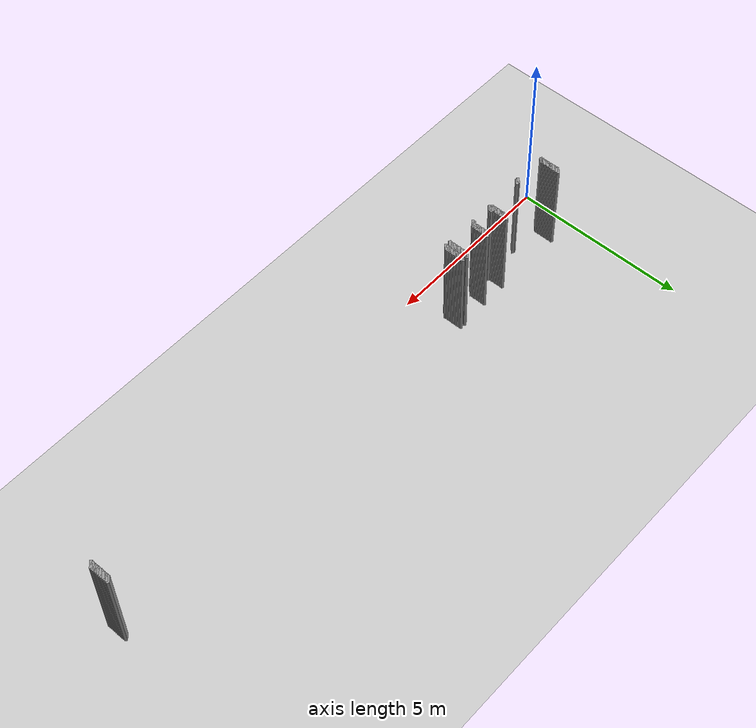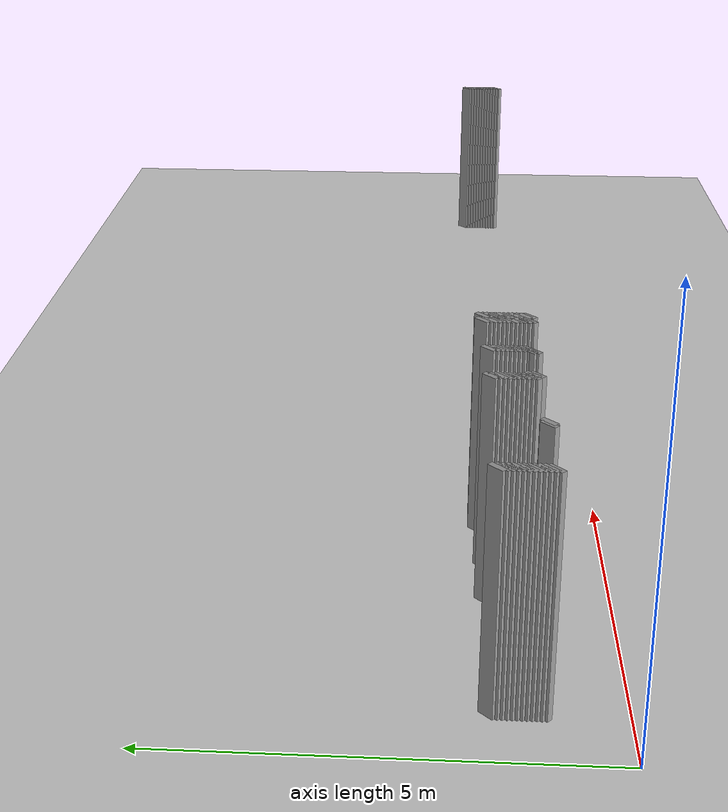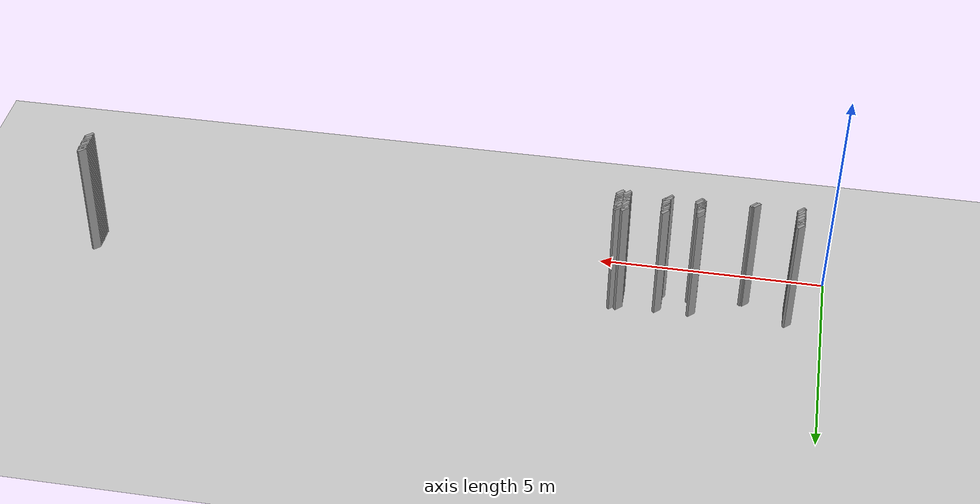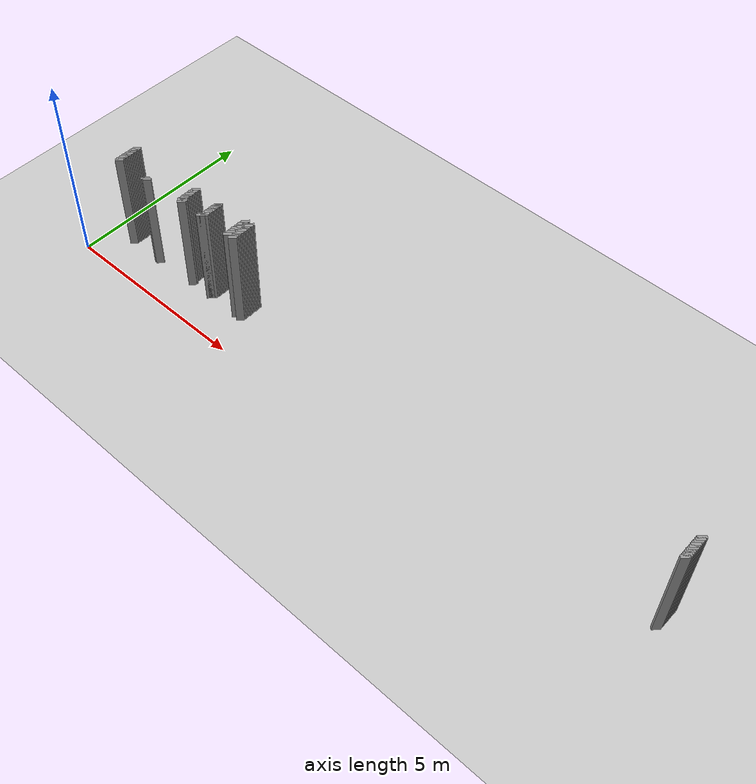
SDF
<sdf version="1.5">
 <world name="default">
  <include><uri>model://ground_plane</uri></include>
  <include><uri>model://sun</uri></include>
  <model name="grey_wall_2516">
   <static>1</static>
   <link name="link">
    <pose>4.45 1.5  1.4 0 0 -0.7853981633974394</pose>
    <collision name="collision">
     <geometry><box><size>0.07071067811865513 .2  2.8</size></box></geometry>
    </collision>
    <visual name="visual">
     <cast_shadows>0</cast_shadows>
     <geometry><box><size>0.07071067811865513 .2  2.8</size></box></geometry>
     <material>
      <script>
       <uri>model://grey_wall/materials/scripts</uri>
       <uri>model://grey_wall/materials/textures</uri>
       <name>vrc/grey_wall</name>
      </script>
     </material>
    </visual>
   </link>
  </model>
  <model name="grey_wall_2517">
   <static>1</static>
   <link name="link">
    <pose>4.6000000000000005 1.5  1.4 0 0 -0.7853981633974394</pose>
    <collision name="collision">
     <geometry><box><size>0.07071067811865513 .2  2.8</size></box></geometry>
    </collision>
    <visual name="visual">
     <cast_shadows>0</cast_shadows>
     <geometry><box><size>0.07071067811865513 .2  2.8</size></box></geometry>
     <material>
      <script>
       <uri>model://grey_wall/materials/scripts</uri>
       <uri>model://grey_wall/materials/textures</uri>
       <name>vrc/grey_wall</name>
      </script>
     </material>
    </visual>
   </link>
  </model>
  <model name="grey_wall_2518">
   <static>1</static>
   <link name="link">
    <pose>16.45 1.5  1.4 0 0 -0.7853981633974749</pose>
    <collision name="collision">
     <geometry><box><size>0.07071067811865261 .2  2.8</size></box></geometry>
    </collision>
    <visual name="visual">
     <cast_shadows>0</cast_shadows>
     <geometry><box><size>0.07071067811865261 .2  2.8</size></box></geometry>
     <material>
      <script>
       <uri>model://grey_wall/materials/scripts</uri>
       <uri>model://grey_wall/materials/textures</uri>
       <name>vrc/grey_wall</name>
      </script>
     </material>
    </visual>
   </link>
  </model>
  <model name="grey_wall_2519">
   <static>1</static>
   <link name="link">
    <pose>0.75 1.4500000000000002  1.4 0 0 -0.7853981633974461</pose>
    <collision name="collision">
     <geometry><box><size>0.07071067811865465 .2  2.8</size></box></geometry>
    </collision>
    <visual name="visual">
     <cast_shadows>0</cast_shadows>
     <geometry><box><size>0.07071067811865465 .2  2.8</size></box></geometry>
     <material>
      <script>
       <uri>model://grey_wall/materials/scripts</uri>
       <uri>model://grey_wall/materials/textures</uri>
       <name>vrc/grey_wall</name>
      </script>
     </material>
    </visual>
   </link>
  </model>
  <model name="grey_wall_2520">
   <static>1</static>
   <link name="link">
    <pose>2.85 1.4500000000000002  1.4 0 0 -0.7853981633974483</pose>
    <collision name="collision">
     <geometry><box><size>0.0707106781186545 .2  2.8</size></box></geometry>
    </collision>
    <visual name="visual">
     <cast_shadows>0</cast_shadows>
     <geometry><box><size>0.0707106781186545 .2  2.8</size></box></geometry>
     <material>
      <script>
       <uri>model://grey_wall/materials/scripts</uri>
       <uri>model://grey_wall/materials/textures</uri>
       <name>vrc/grey_wall</name>
      </script>
     </material>
    </visual>
   </link>
  </model>
  <model name="grey_wall_2521">
   <static>1</static>
   <link name="link">
    <pose>3.6 1.4500000000000002  1.4 0 0 -0.7853981633974483</pose>
    <collision name="collision">
     <geometry><box><size>0.0707106781186545 .2  2.8</size></box></geometry>
    </collision>
    <visual name="visual">
     <cast_shadows>0</cast_shadows>
     <geometry><box><size>0.0707106781186545 .2  2.8</size></box></geometry>
     <material>
      <script>
       <uri>model://grey_wall/materials/scripts</uri>
       <uri>model://grey_wall/materials/textures</uri>
       <name>vrc/grey_wall</name>
      </script>
     </material>
    </visual>
   </link>
  </model>
  <model name="grey_wall_2522">
   <static>1</static>
   <link name="link">
    <pose>4.45 1.4500000000000002  1.4 0 0 -0.7853981633974394</pose>
    <collision name="collision">
     <geometry><box><size>0.07071067811865513 .2  2.8</size></box></geometry>
    </collision>
    <visual name="visual">
     <cast_shadows>0</cast_shadows>
     <geometry><box><size>0.07071067811865513 .2  2.8</size></box></geometry>
     <material>
      <script>
       <uri>model://grey_wall/materials/scripts</uri>
       <uri>model://grey_wall/materials/textures</uri>
       <name>vrc/grey_wall</name>
      </script>
     </material>
    </visual>
   </link>
  </model>
  <model name="grey_wall_2523">
   <static>1</static>
   <link name="link">
    <pose>4.6000000000000005 1.4500000000000002  1.4 0 0 -0.7853981633974394</pose>
    <collision name="collision">
     <geometry><box><size>0.07071067811865513 .2  2.8</size></box></geometry>
    </collision>
    <visual name="visual">
     <cast_shadows>0</cast_shadows>
     <geometry><box><size>0.07071067811865513 .2  2.8</size></box></geometry>
     <material>
      <script>
       <uri>model://grey_wall/materials/scripts</uri>
       <uri>model://grey_wall/materials/textures</uri>
       <name>vrc/grey_wall</name>
      </script>
     </material>
    </visual>
   </link>
  </model>
  <model name="grey_wall_2524">
   <static>1</static>
   <link name="link">
    <pose>16.45 1.4500000000000002  1.4 0 0 -0.7853981633974749</pose>
    <collision name="collision">
     <geometry><box><size>0.07071067811865261 .2  2.8</size></box></geometry>
    </collision>
    <visual name="visual">
     <cast_shadows>0</cast_shadows>
     <geometry><box><size>0.07071067811865261 .2  2.8</size></box></geometry>
     <material>
      <script>
       <uri>model://grey_wall/materials/scripts</uri>
       <uri>model://grey_wall/materials/textures</uri>
       <name>vrc/grey_wall</name>
      </script>
     </material>
    </visual>
   </link>
  </model>
  <model name="grey_wall_2525">
   <static>1</static>
   <link name="link">
    <pose>0.75 1.4000000000000001  1.4 0 0 -0.7853981633974461</pose>
    <collision name="collision">
     <geometry><box><size>0.07071067811865465 .2  2.8</size></box></geometry>
    </collision>
    <visual name="visual">
     <cast_shadows>0</cast_shadows>
     <geometry><box><size>0.07071067811865465 .2  2.8</size></box></geometry>
     <material>
      <script>
       <uri>model://grey_wall/materials/scripts</uri>
       <uri>model://grey_wall/materials/textures</uri>
       <name>vrc/grey_wall</name>
      </script>
     </material>
    </visual>
   </link>
  </model>
  <model name="grey_wall_2526">
   <static>1</static>
   <link name="link">
    <pose>2.85 1.4000000000000001  1.4 0 0 -0.7853981633974483</pose>
    <collision name="collision">
     <geometry><box><size>0.0707106781186545 .2  2.8</size></box></geometry>
    </collision>
    <visual name="visual">
     <cast_shadows>0</cast_shadows>
     <geometry><box><size>0.0707106781186545 .2  2.8</size></box></geometry>
     <material>
      <script>
       <uri>model://grey_wall/materials/scripts</uri>
       <uri>model://grey_wall/materials/textures</uri>
       <name>vrc/grey_wall</name>
      </script>
     </material>
    </visual>
   </link>
  </model>
  <model name="grey_wall_2527">
   <static>1</static>
   <link name="link">
    <pose>3.6 1.4000000000000001  1.4 0 0 -0.7853981633974483</pose>
    <collision name="collision">
     <geometry><box><size>0.0707106781186545 .2  2.8</size></box></geometry>
    </collision>
    <visual name="visual">
     <cast_shadows>0</cast_shadows>
     <geometry><box><size>0.0707106781186545 .2  2.8</size></box></geometry>
     <material>
      <script>
       <uri>model://grey_wall/materials/scripts</uri>
       <uri>model://grey_wall/materials/textures</uri>
       <name>vrc/grey_wall</name>
      </script>
     </material>
    </visual>
   </link>
  </model>
  <model name="grey_wall_2528">
   <static>1</static>
   <link name="link">
    <pose>4.45 1.4000000000000001  1.4 0 0 -0.7853981633974394</pose>
    <collision name="collision">
     <geometry><box><size>0.07071067811865513 .2  2.8</size></box></geometry>
    </collision>
    <visual name="visual">
     <cast_shadows>0</cast_shadows>
     <geometry><box><size>0.07071067811865513 .2  2.8</size></box></geometry>
     <material>
      <script>
       <uri>model://grey_wall/materials/scripts</uri>
       <uri>model://grey_wall/materials/textures</uri>
       <name>vrc/grey_wall</name>
      </script>
     </material>
    </visual>
   </link>
  </model>
  <model name="grey_wall_2529">
   <static>1</static>
   <link name="link">
    <pose>4.6000000000000005 1.4000000000000001  1.4 0 0 -0.7853981633974394</pose>
    <collision name="collision">
     <geometry><box><size>0.07071067811865513 .2  2.8</size></box></geometry>
    </collision>
    <visual name="visual">
     <cast_shadows>0</cast_shadows>
     <geometry><box><size>0.07071067811865513 .2  2.8</size></box></geometry>
     <material>
      <script>
       <uri>model://grey_wall/materials/scripts</uri>
       <uri>model://grey_wall/materials/textures</uri>
       <name>vrc/grey_wall</name>
      </script>
     </material>
    </visual>
   </link>
  </model>
  <model name="grey_wall_2530">
   <static>1</static>
   <link name="link">
    <pose>16.45 1.4000000000000001  1.4 0 0 -0.7853981633974749</pose>
    <collision name="collision">
     <geometry><box><size>0.07071067811865261 .2  2.8</size></box></geometry>
    </collision>
    <visual name="visual">
     <cast_shadows>0</cast_shadows>
     <geometry><box><size>0.07071067811865261 .2  2.8</size></box></geometry>
     <material>
      <script>
       <uri>model://grey_wall/materials/scripts</uri>
       <uri>model://grey_wall/materials/textures</uri>
       <name>vrc/grey_wall</name>
      </script>
     </material>
    </visual>
   </link>
  </model>
  <model name="grey_wall_2531">
   <static>1</static>
   <link name="link">
    <pose>0.75 1.35  1.4 0 0 -0.7853981633974461</pose>
    <collision name="collision">
     <geometry><box><size>0.07071067811865465 .2  2.8</size></box></geometry>
    </collision>
    <visual name="visual">
     <cast_shadows>0</cast_shadows>
     <geometry><box><size>0.07071067811865465 .2  2.8</size></box></geometry>
     <material>
      <script>
       <uri>model://grey_wall/materials/scripts</uri>
       <uri>model://grey_wall/materials/textures</uri>
       <name>vrc/grey_wall</name>
      </script>
     </material>
    </visual>
   </link>
  </model>
  <model name="grey_wall_2532">
   <static>1</static>
   <link name="link">
    <pose>2.85 1.35  1.4 0 0 -0.7853981633974483</pose>
    <collision name="collision">
     <geometry><box><size>0.0707106781186545 .2  2.8</size></box></geometry>
    </collision>
    <visual name="visual">
     <cast_shadows>0</cast_shadows>
     <geometry><box><size>0.0707106781186545 .2  2.8</size></box></geometry>
     <material>
      <script>
       <uri>model://grey_wall/materials/scripts</uri>
       <uri>model://grey_wall/materials/textures</uri>
       <name>vrc/grey_wall</name>
      </script>
     </material>
    </visual>
   </link>
  </model>
  <model name="grey_wall_2533">
   <static>1</static>
   <link name="link">
    <pose>3.6 1.35  1.4 0 0 -0.7853981633974483</pose>
    <collision name="collision">
     <geometry><box><size>0.0707106781186545 .2  2.8</size></box></geometry>
    </collision>
    <visual name="visual">
     <cast_shadows>0</cast_shadows>
     <geometry><box><size>0.0707106781186545 .2  2.8</size></box></geometry>
     <material>
      <script>
       <uri>model://grey_wall/materials/scripts</uri>
       <uri>model://grey_wall/materials/textures</uri>
       <name>vrc/grey_wall</name>
      </script>
     </material>
    </visual>
   </link>
  </model>
  <model name="grey_wall_2534">
   <static>1</static>
   <link name="link">
    <pose>4.45 1.35  1.4 0 0 -0.7853981633974394</pose>
    <collision name="collision">
     <geometry><box><size>0.07071067811865513 .2  2.8</size></box></geometry>
    </collision>
    <visual name="visual">
     <cast_shadows>0</cast_shadows>
     <geometry><box><size>0.07071067811865513 .2  2.8</size></box></geometry>
     <material>
      <script>
       <uri>model://grey_wall/materials/scripts</uri>
       <uri>model://grey_wall/materials/textures</uri>
       <name>vrc/grey_wall</name>
      </script>
     </material>
    </visual>
   </link>
  </model>
  <model name="grey_wall_2535">
   <static>1</static>
   <link name="link">
    <pose>4.6000000000000005 1.35  1.4 0 0 -0.7853981633974394</pose>
    <collision name="collision">
     <geometry><box><size>0.07071067811865513 .2  2.8</size></box></geometry>
    </collision>
    <visual name="visual">
     <cast_shadows>0</cast_shadows>
     <geometry><box><size>0.07071067811865513 .2  2.8</size></box></geometry>
     <material>
      <script>
       <uri>model://grey_wall/materials/scripts</uri>
       <uri>model://grey_wall/materials/textures</uri>
       <name>vrc/grey_wall</name>
      </script>
     </material>
    </visual>
   </link>
  </model>
  <model name="grey_wall_2536">
   <static>1</static>
   <link name="link">
    <pose>16.45 1.35  1.4 0 0 -0.7853981633974749</pose>
    <collision name="collision">
     <geometry><box><size>0.07071067811865261 .2  2.8</size></box></geometry>
    </collision>
    <visual name="visual">
     <cast_shadows>0</cast_shadows>
     <geometry><box><size>0.07071067811865261 .2  2.8</size></box></geometry>
     <material>
      <script>
       <uri>model://grey_wall/materials/scripts</uri>
       <uri>model://grey_wall/materials/textures</uri>
       <name>vrc/grey_wall</name>
      </script>
     </material>
    </visual>
   </link>
  </model>
  <model name="grey_wall_2537">
   <static>1</static>
   <link name="link">
    <pose>0.75 1.3  1.4 0 0 -0.7853981633974461</pose>
    <collision name="collision">
     <geometry><box><size>0.07071067811865465 .2  2.8</size></box></geometry>
    </collision>
    <visual name="visual">
     <cast_shadows>0</cast_shadows>
     <geometry><box><size>0.07071067811865465 .2  2.8</size></box></geometry>
     <material>
      <script>
       <uri>model://grey_wall/materials/scripts</uri>
       <uri>model://grey_wall/materials/textures</uri>
       <name>vrc/grey_wall</name>
      </script>
     </material>
    </visual>
   </link>
  </model>
  <model name="grey_wall_2538">
   <static>1</static>
   <link name="link">
    <pose>2.85 1.3  1.4 0 0 -0.7853981633974483</pose>
    <collision name="collision">
     <geometry><box><size>0.0707106781186545 .2  2.8</size></box></geometry>
    </collision>
    <visual name="visual">
     <cast_shadows>0</cast_shadows>
     <geometry><box><size>0.0707106781186545 .2  2.8</size></box></geometry>
     <material>
      <script>
       <uri>model://grey_wall/materials/scripts</uri>
       <uri>model://grey_wall/materials/textures</uri>
       <name>vrc/grey_wall</name>
      </script>
     </material>
    </visual>
   </link>
  </model>
  <model name="grey_wall_2539">
   <static>1</static>
   <link name="link">
    <pose>3.6 1.3  1.4 0 0 -0.7853981633974483</pose>
    <collision name="collision">
     <geometry><box><size>0.0707106781186545 .2  2.8</size></box></geometry>
    </collision>
    <visual name="visual">
     <cast_shadows>0</cast_shadows>
     <geometry><box><size>0.0707106781186545 .2  2.8</size></box></geometry>
     <material>
      <script>
       <uri>model://grey_wall/materials/scripts</uri>
       <uri>model://grey_wall/materials/textures</uri>
       <name>vrc/grey_wall</name>
      </script>
     </material>
    </visual>
   </link>
  </model>
  <model name="grey_wall_2540">
   <static>1</static>
   <link name="link">
    <pose>4.45 1.3  1.4 0 0 -0.7853981633974394</pose>
    <collision name="collision">
     <geometry><box><size>0.07071067811865513 .2  2.8</size></box></geometry>
    </collision>
    <visual name="visual">
     <cast_shadows>0</cast_shadows>
     <geometry><box><size>0.07071067811865513 .2  2.8</size></box></geometry>
     <material>
      <script>
       <uri>model://grey_wall/materials/scripts</uri>
       <uri>model://grey_wall/materials/textures</uri>
       <name>vrc/grey_wall</name>
      </script>
     </material>
    </visual>
   </link>
  </model>
  <model name="grey_wall_2541">
   <static>1</static>
   <link name="link">
    <pose>4.6000000000000005 1.3  1.4 0 0 -0.7853981633974394</pose>
    <collision name="collision">
     <geometry><box><size>0.07071067811865513 .2  2.8</size></box></geometry>
    </collision>
    <visual name="visual">
     <cast_shadows>0</cast_shadows>
     <geometry><box><size>0.07071067811865513 .2  2.8</size></box></geometry>
     <material>
      <script>
       <uri>model://grey_wall/materials/scripts</uri>
       <uri>model://grey_wall/materials/textures</uri>
       <name>vrc/grey_wall</name>
      </script>
     </material>
    </visual>
   </link>
  </model>
  <model name="grey_wall_2542">
   <static>1</static>
   <link name="link">
    <pose>16.45 1.3  1.4 0 0 -0.7853981633974749</pose>
    <collision name="collision">
     <geometry><box><size>0.07071067811865261 .2  2.8</size></box></geometry>
    </collision>
    <visual name="visual">
     <cast_shadows>0</cast_shadows>
     <geometry><box><size>0.07071067811865261 .2  2.8</size></box></geometry>
     <material>
      <script>
       <uri>model://grey_wall/materials/scripts</uri>
       <uri>model://grey_wall/materials/textures</uri>
       <name>vrc/grey_wall</name>
      </script>
     </material>
    </visual>
   </link>
  </model>
  <model name="grey_wall_2543">
   <static>1</static>
   <link name="link">
    <pose>0.75 1.25  1.4 0 0 -0.7853981633974461</pose>
    <collision name="collision">
     <geometry><box><size>0.07071067811865465 .2  2.8</size></box></geometry>
    </collision>
    <visual name="visual">
     <cast_shadows>0</cast_shadows>
     <geometry><box><size>0.07071067811865465 .2  2.8</size></box></geometry>
     <material>
      <script>
       <uri>model://grey_wall/materials/scripts</uri>
       <uri>model://grey_wall/materials/textures</uri>
       <name>vrc/grey_wall</name>
      </script>
     </material>
    </visual>
   </link>
  </model>
  <model name="grey_wall_2544">
   <static>1</static>
   <link name="link">
    <pose>2.85 1.25  1.4 0 0 -0.7853981633974483</pose>
    <collision name="collision">
     <geometry><box><size>0.0707106781186545 .2  2.8</size></box></geometry>
    </collision>
    <visual name="visual">
     <cast_shadows>0</cast_shadows>
     <geometry><box><size>0.0707106781186545 .2  2.8</size></box></geometry>
     <material>
      <script>
       <uri>model://grey_wall/materials/scripts</uri>
       <uri>model://grey_wall/materials/textures</uri>
       <name>vrc/grey_wall</name>
      </script>
     </material>
    </visual>
   </link>
  </model>
  <model name="grey_wall_2545">
   <static>1</static>
   <link name="link">
    <pose>3.6 1.25  1.4 0 0 -0.7853981633974483</pose>
    <collision name="collision">
     <geometry><box><size>0.0707106781186545 .2  2.8</size></box></geometry>
    </collision>
    <visual name="visual">
     <cast_shadows>0</cast_shadows>
     <geometry><box><size>0.0707106781186545 .2  2.8</size></box></geometry>
     <material>
      <script>
       <uri>model://grey_wall/materials/scripts</uri>
       <uri>model://grey_wall/materials/textures</uri>
       <name>vrc/grey_wall</name>
      </script>
     </material>
    </visual>
   </link>
  </model>
  <model name="grey_wall_2546">
   <static>1</static>
   <link name="link">
    <pose>4.45 1.25  1.4 0 0 -0.7853981633974394</pose>
    <collision name="collision">
     <geometry><box><size>0.07071067811865513 .2  2.8</size></box></geometry>
    </collision>
    <visual name="visual">
     <cast_shadows>0</cast_shadows>
     <geometry><box><size>0.07071067811865513 .2  2.8</size></box></geometry>
     <material>
      <script>
       <uri>model://grey_wall/materials/scripts</uri>
       <uri>model://grey_wall/materials/textures</uri>
       <name>vrc/grey_wall</name>
      </script>
     </material>
    </visual>
   </link>
  </model>
  <model name="grey_wall_2547">
   <static>1</static>
   <link name="link">
    <pose>4.6000000000000005 1.25  1.4 0 0 -0.7853981633974394</pose>
    <collision name="collision">
     <geometry><box><size>0.07071067811865513 .2  2.8</size></box></geometry>
    </collision>
    <visual name="visual">
     <cast_shadows>0</cast_shadows>
     <geometry><box><size>0.07071067811865513 .2  2.8</size></box></geometry>
     <material>
      <script>
       <uri>model://grey_wall/materials/scripts</uri>
       <uri>model://grey_wall/materials/textures</uri>
       <name>vrc/grey_wall</name>
      </script>
     </material>
    </visual>
   </link>
  </model>
  <model name="grey_wall_2548">
   <static>1</static>
   <link name="link">
    <pose>16.45 1.25  1.4 0 0 -0.7853981633974749</pose>
    <collision name="collision">
     <geometry><box><size>0.07071067811865261 .2  2.8</size></box></geometry>
    </collision>
    <visual name="visual">
     <cast_shadows>0</cast_shadows>
     <geometry><box><size>0.07071067811865261 .2  2.8</size></box></geometry>
     <material>
      <script>
       <uri>model://grey_wall/materials/scripts</uri>
       <uri>model://grey_wall/materials/textures</uri>
       <name>vrc/grey_wall</name>
      </script>
     </material>
    </visual>
   </link>
  </model>
  <model name="grey_wall_2549">
   <static>1</static>
   <link name="link">
    <pose>0.75 1.2000000000000002  1.4 0 0 -0.7853981633974461</pose>
    <collision name="collision">
     <geometry><box><size>0.07071067811865465 .2  2.8</size></box></geometry>
    </collision>
    <visual name="visual">
     <cast_shadows>0</cast_shadows>
     <geometry><box><size>0.07071067811865465 .2  2.8</size></box></geometry>
     <material>
      <script>
       <uri>model://grey_wall/materials/scripts</uri>
       <uri>model://grey_wall/materials/textures</uri>
       <name>vrc/grey_wall</name>
      </script>
     </material>
    </visual>
   </link>
  </model>
  <model name="grey_wall_2550">
   <static>1</static>
   <link name="link">
    <pose>2.85 1.2000000000000002  1.4 0 0 -0.7853981633974483</pose>
    <collision name="collision">
     <geometry><box><size>0.0707106781186545 .2  2.8</size></box></geometry>
    </collision>
    <visual name="visual">
     <cast_shadows>0</cast_shadows>
     <geometry><box><size>0.0707106781186545 .2  2.8</size></box></geometry>
     <material>
      <script>
       <uri>model://grey_wall/materials/scripts</uri>
       <uri>model://grey_wall/materials/textures</uri>
       <name>vrc/grey_wall</name>
      </script>
     </material>
    </visual>
   </link>
  </model>
  <model name="grey_wall_2551">
   <static>1</static>
   <link name="link">
    <pose>3.6 1.2000000000000002  1.4 0 0 -0.7853981633974483</pose>
    <collision name="collision">
     <geometry><box><size>0.0707106781186545 .2  2.8</size></box></geometry>
    </collision>
    <visual name="visual">
     <cast_shadows>0</cast_shadows>
     <geometry><box><size>0.0707106781186545 .2  2.8</size></box></geometry>
     <material>
      <script>
       <uri>model://grey_wall/materials/scripts</uri>
       <uri>model://grey_wall/materials/textures</uri>
       <name>vrc/grey_wall</name>
      </script>
     </material>
    </visual>
   </link>
  </model>
  <model name="grey_wall_2552">
   <static>1</static>
   <link name="link">
    <pose>4.45 1.2000000000000002  1.4 0 0 -0.7853981633974394</pose>
    <collision name="collision">
     <geometry><box><size>0.07071067811865513 .2  2.8</size></box></geometry>
    </collision>
    <visual name="visual">
     <cast_shadows>0</cast_shadows>
     <geometry><box><size>0.07071067811865513 .2  2.8</size></box></geometry>
     <material>
      <script>
       <uri>model://grey_wall/materials/scripts</uri>
       <uri>model://grey_wall/materials/textures</uri>
       <name>vrc/grey_wall</name>
      </script>
     </material>
    </visual>
   </link>
  </model>
  <model name="grey_wall_2553">
   <static>1</static>
   <link name="link">
    <pose>4.6000000000000005 1.2000000000000002  1.4 0 0 -0.7853981633974394</pose>
    <collision name="collision">
     <geometry><box><size>0.07071067811865513 .2  2.8</size></box></geometry>
    </collision>
    <visual name="visual">
     <cast_shadows>0</cast_shadows>
     <geometry><box><size>0.07071067811865513 .2  2.8</size></box></geometry>
     <material>
      <script>
       <uri>model://grey_wall/materials/scripts</uri>
       <uri>model://grey_wall/materials/textures</uri>
       <name>vrc/grey_wall</name>
      </script>
     </material>
    </visual>
   </link>
  </model>
  <model name="grey_wall_2554">
   <static>1</static>
   <link name="link">
    <pose>16.45 1.2000000000000002  1.4 0 0 -0.7853981633974749</pose>
    <collision name="collision">
     <geometry><box><size>0.07071067811865261 .2  2.8</size></box></geometry>
    </collision>
    <visual name="visual">
     <cast_shadows>0</cast_shadows>
     <geometry><box><size>0.07071067811865261 .2  2.8</size></box></geometry>
     <material>
      <script>
       <uri>model://grey_wall/materials/scripts</uri>
       <uri>model://grey_wall/materials/textures</uri>
       <name>vrc/grey_wall</name>
      </script>
     </material>
    </visual>
   </link>
  </model>
  <model name="grey_wall_2555">
   <static>1</static>
   <link name="link">
    <pose>0.75 1.1500000000000001  1.4 0 0 -0.7853981633974461</pose>
    <collision name="collision">
     <geometry><box><size>0.07071067811865465 .2  2.8</size></box></geometry>
    </collision>
    <visual name="visual">
     <cast_shadows>0</cast_shadows>
     <geometry><box><size>0.07071067811865465 .2  2.8</size></box></geometry>
     <material>
      <script>
       <uri>model://grey_wall/materials/scripts</uri>
       <uri>model://grey_wall/materials/textures</uri>
       <name>vrc/grey_wall</name>
      </script>
     </material>
    </visual>
   </link>
  </model>
  <model name="grey_wall_2556">
   <static>1</static>
   <link name="link">
    <pose>2.85 1.1500000000000001  1.4 0 0 -0.7853981633974483</pose>
    <collision name="collision">
     <geometry><box><size>0.0707106781186545 .2  2.8</size></box></geometry>
    </collision>
    <visual name="visual">
     <cast_shadows>0</cast_shadows>
     <geometry><box><size>0.0707106781186545 .2  2.8</size></box></geometry>
     <material>
      <script>
       <uri>model://grey_wall/materials/scripts</uri>
       <uri>model://grey_wall/materials/textures</uri>
       <name>vrc/grey_wall</name>
      </script>
     </material>
    </visual>
   </link>
  </model>
  <model name="grey_wall_2557">
   <static>1</static>
   <link name="link">
    <pose>3.6 1.1500000000000001  1.4 0 0 -0.7853981633974483</pose>
    <collision name="collision">
     <geometry><box><size>0.0707106781186545 .2  2.8</size></box></geometry>
    </collision>
    <visual name="visual">
     <cast_shadows>0</cast_shadows>
     <geometry><box><size>0.0707106781186545 .2  2.8</size></box></geometry>
     <material>
      <script>
       <uri>model://grey_wall/materials/scripts</uri>
       <uri>model://grey_wall/materials/textures</uri>
       <name>vrc/grey_wall</name>
      </script>
     </material>
    </visual>
   </link>
  </model>
  <model name="grey_wall_2558">
   <static>1</static>
   <link name="link">
    <pose>4.45 1.1500000000000001  1.4 0 0 -0.7853981633974394</pose>
    <collision name="collision">
     <geometry><box><size>0.07071067811865513 .2  2.8</size></box></geometry>
    </collision>
    <visual name="visual">
     <cast_shadows>0</cast_shadows>
     <geometry><box><size>0.07071067811865513 .2  2.8</size></box></geometry>
     <material>
      <script>
       <uri>model://grey_wall/materials/scripts</uri>
       <uri>model://grey_wall/materials/textures</uri>
       <name>vrc/grey_wall</name>
      </script>
     </material>
    </visual>
   </link>
  </model>
  <model name="grey_wall_2559">
   <static>1</static>
   <link name="link">
    <pose>4.6000000000000005 1.1500000000000001  1.4 0 0 -0.7853981633974394</pose>
    <collision name="collision">
     <geometry><box><size>0.07071067811865513 .2  2.8</size></box></geometry>
    </collision>
    <visual name="visual">
     <cast_shadows>0</cast_shadows>
     <geometry><box><size>0.07071067811865513 .2  2.8</size></box></geometry>
     <material>
      <script>
       <uri>model://grey_wall/materials/scripts</uri>
       <uri>model://grey_wall/materials/textures</uri>
       <name>vrc/grey_wall</name>
      </script>
     </material>
    </visual>
   </link>
  </model>
  <model name="grey_wall_2560">
   <static>1</static>
   <link name="link">
    <pose>16.45 1.1500000000000001  1.4 0 0 -0.7853981633974749</pose>
    <collision name="collision">
     <geometry><box><size>0.07071067811865261 .2  2.8</size></box></geometry>
    </collision>
    <visual name="visual">
     <cast_shadows>0</cast_shadows>
     <geometry><box><size>0.07071067811865261 .2  2.8</size></box></geometry>
     <material>
      <script>
       <uri>model://grey_wall/materials/scripts</uri>
       <uri>model://grey_wall/materials/textures</uri>
       <name>vrc/grey_wall</name>
      </script>
     </material>
    </visual>
   </link>
  </model>
  <model name="grey_wall_2561">
   <static>1</static>
   <link name="link">
    <pose>0.75 1.1  1.4 0 0 -0.7853981633974461</pose>
    <collision name="collision">
     <geometry><box><size>0.07071067811865465 .2  2.8</size></box></geometry>
    </collision>
    <visual name="visual">
     <cast_shadows>0</cast_shadows>
     <geometry><box><size>0.07071067811865465 .2  2.8</size></box></geometry>
     <material>
      <script>
       <uri>model://grey_wall/materials/scripts</uri>
       <uri>model://grey_wall/materials/textures</uri>
       <name>vrc/grey_wall</name>
      </script>
     </material>
    </visual>
   </link>
  </model>
  <model name="grey_wall_2562">
   <static>1</static>
   <link name="link">
    <pose>2.85 1.1  1.4 0 0 -0.7853981633974483</pose>
    <collision name="collision">
     <geometry><box><size>0.0707106781186545 .2  2.8</size></box></geometry>
    </collision>
    <visual name="visual">
     <cast_shadows>0</cast_shadows>
     <geometry><box><size>0.0707106781186545 .2  2.8</size></box></geometry>
     <material>
      <script>
       <uri>model://grey_wall/materials/scripts</uri>
       <uri>model://grey_wall/materials/textures</uri>
       <name>vrc/grey_wall</name>
      </script>
     </material>
    </visual>
   </link>
  </model>
  <model name="grey_wall_2563">
   <static>1</static>
   <link name="link">
    <pose>3.6 1.1  1.4 0 0 -0.7853981633974483</pose>
    <collision name="collision">
     <geometry><box><size>0.0707106781186545 .2  2.8</size></box></geometry>
    </collision>
    <visual name="visual">
     <cast_shadows>0</cast_shadows>
     <geometry><box><size>0.0707106781186545 .2  2.8</size></box></geometry>
     <material>
      <script>
       <uri>model://grey_wall/materials/scripts</uri>
       <uri>model://grey_wall/materials/textures</uri>
       <name>vrc/grey_wall</name>
      </script>
     </material>
    </visual>
   </link>
  </model>
  <model name="grey_wall_2564">
   <static>1</static>
   <link name="link">
    <pose>4.45 1.1  1.4 0 0 -0.7853981633974394</pose>
    <collision name="collision">
     <geometry><box><size>0.07071067811865513 .2  2.8</size></box></geometry>
    </collision>
    <visual name="visual">
     <cast_shadows>0</cast_shadows>
     <geometry><box><size>0.07071067811865513 .2  2.8</size></box></geometry>
     <material>
      <script>
       <uri>model://grey_wall/materials/scripts</uri>
       <uri>model://grey_wall/materials/textures</uri>
       <name>vrc/grey_wall</name>
      </script>
     </material>
    </visual>
   </link>
  </model>
  <model name="grey_wall_2565">
   <static>1</static>
   <link name="link">
    <pose>4.6000000000000005 1.1  1.4 0 0 -0.7853981633974394</pose>
    <collision name="collision">
     <geometry><box><size>0.07071067811865513 .2  2.8</size></box></geometry>
    </collision>
    <visual name="visual">
     <cast_shadows>0</cast_shadows>
     <geometry><box><size>0.07071067811865513 .2  2.8</size></box></geometry>
     <material>
      <script>
       <uri>model://grey_wall/materials/scripts</uri>
       <uri>model://grey_wall/materials/textures</uri>
       <name>vrc/grey_wall</name>
      </script>
     </material>
    </visual>
   </link>
  </model>
  <model name="grey_wall_2566">
   <static>1</static>
   <link name="link">
    <pose>16.45 1.1  1.4 0 0 -0.7853981633974749</pose>
    <collision name="collision">
     <geometry><box><size>0.07071067811865261 .2  2.8</size></box></geometry>
    </collision>
    <visual name="visual">
     <cast_shadows>0</cast_shadows>
     <geometry><box><size>0.07071067811865261 .2  2.8</size></box></geometry>
     <material>
      <script>
       <uri>model://grey_wall/materials/scripts</uri>
       <uri>model://grey_wall/materials/textures</uri>
       <name>vrc/grey_wall</name>
      </script>
     </material>
    </visual>
   </link>
  </model>
  <model name="grey_wall_2567">
   <static>1</static>
   <link name="link">
    <pose>0.75 1.05  1.4 0 0 -0.7853981633974461</pose>
    <collision name="collision">
     <geometry><box><size>0.07071067811865465 .2  2.8</size></box></geometry>
    </collision>
    <visual name="visual">
     <cast_shadows>0</cast_shadows>
     <geometry><box><size>0.07071067811865465 .2  2.8</size></box></geometry>
     <material>
      <script>
       <uri>model://grey_wall/materials/scripts</uri>
       <uri>model://grey_wall/materials/textures</uri>
       <name>vrc/grey_wall</name>
      </script>
     </material>
    </visual>
   </link>
  </model>
  <model name="grey_wall_2568">
   <static>1</static>
   <link name="link">
    <pose>2.85 1.05  1.4 0 0 -0.7853981633974483</pose>
    <collision name="collision">
     <geometry><box><size>0.0707106781186545 .2  2.8</size></box></geometry>
    </collision>
    <visual name="visual">
     <cast_shadows>0</cast_shadows>
     <geometry><box><size>0.0707106781186545 .2  2.8</size></box></geometry>
     <material>
      <script>
       <uri>model://grey_wall/materials/scripts</uri>
       <uri>model://grey_wall/materials/textures</uri>
       <name>vrc/grey_wall</name>
      </script>
     </material>
    </visual>
   </link>
  </model>
  <model name="grey_wall_2569">
   <static>1</static>
   <link name="link">
    <pose>3.6 1.05  1.4 0 0 -0.7853981633974483</pose>
    <collision name="collision">
     <geometry><box><size>0.0707106781186545 .2  2.8</size></box></geometry>
    </collision>
    <visual name="visual">
     <cast_shadows>0</cast_shadows>
     <geometry><box><size>0.0707106781186545 .2  2.8</size></box></geometry>
     <material>
      <script>
       <uri>model://grey_wall/materials/scripts</uri>
       <uri>model://grey_wall/materials/textures</uri>
       <name>vrc/grey_wall</name>
      </script>
     </material>
    </visual>
   </link>
  </model>
  <model name="grey_wall_2570">
   <static>1</static>
   <link name="link">
    <pose>4.45 1.05  1.4 0 0 -0.7853981633974394</pose>
    <collision name="collision">
     <geometry><box><size>0.07071067811865513 .2  2.8</size></box></geometry>
    </collision>
    <visual name="visual">
     <cast_shadows>0</cast_shadows>
     <geometry><box><size>0.07071067811865513 .2  2.8</size></box></geometry>
     <material>
      <script>
       <uri>model://grey_wall/materials/scripts</uri>
       <uri>model://grey_wall/materials/textures</uri>
       <name>vrc/grey_wall</name>
      </script>
     </material>
    </visual>
   </link>
  </model>
  <model name="grey_wall_2571">
   <static>1</static>
   <link name="link">
    <pose>4.6000000000000005 1.05  1.4 0 0 -0.7853981633974394</pose>
    <collision name="collision">
     <geometry><box><size>0.07071067811865513 .2  2.8</size></box></geometry>
    </collision>
    <visual name="visual">
     <cast_shadows>0</cast_shadows>
     <geometry><box><size>0.07071067811865513 .2  2.8</size></box></geometry>
     <material>
      <script>
       <uri>model://grey_wall/materials/scripts</uri>
       <uri>model://grey_wall/materials/textures</uri>
       <name>vrc/grey_wall</name>
      </script>
     </material>
    </visual>
   </link>
  </model>
  <model name="grey_wall_2572">
   <static>1</static>
   <link name="link">
    <pose>16.45 1.05  1.4 0 0 -0.7853981633974749</pose>
    <collision name="collision">
     <geometry><box><size>0.07071067811865261 .2  2.8</size></box></geometry>
    </collision>
    <visual name="visual">
     <cast_shadows>0</cast_shadows>
     <geometry><box><size>0.07071067811865261 .2  2.8</size></box></geometry>
     <material>
      <script>
       <uri>model://grey_wall/materials/scripts</uri>
       <uri>model://grey_wall/materials/textures</uri>
       <name>vrc/grey_wall</name>
      </script>
     </material>
    </visual>
   </link>
  </model>
  <model name="grey_wall_2573">
   <static>1</static>
   <link name="link">
    <pose>0.75 1.0  1.4 0 0 -0.7853981633974472</pose>
    <collision name="collision">
     <geometry><box><size>0.07071067811865474 .2  2.8</size></box></geometry>
    </collision>
    <visual name="visual">
     <cast_shadows>0</cast_shadows>
     <geometry><box><size>0.07071067811865474 .2  2.8</size></box></geometry>
     <material>
      <script>
       <uri>model://grey_wall/materials/scripts</uri>
       <uri>model://grey_wall/materials/textures</uri>
       <name>vrc/grey_wall</name>
      </script>
     </material>
    </visual>
   </link>
  </model>
  <model name="grey_wall_2574">
   <static>1</static>
   <link name="link">
    <pose>2.85 1.0  1.4 0 0 -0.7853981633974494</pose>
    <collision name="collision">
     <geometry><box><size>0.07071067811865459 .2  2.8</size></box></geometry>
    </collision>
    <visual name="visual">
     <cast_shadows>0</cast_shadows>
     <geometry><box><size>0.07071067811865459 .2  2.8</size></box></geometry>
     <material>
      <script>
       <uri>model://grey_wall/materials/scripts</uri>
       <uri>model://grey_wall/materials/textures</uri>
       <name>vrc/grey_wall</name>
      </script>
     </material>
    </visual>
   </link>
  </model>
  <model name="grey_wall_2575">
   <static>1</static>
   <link name="link">
    <pose>2.9000000000000004 1.0  1.4 0 0 -0.7853981633974494</pose>
    <collision name="collision">
     <geometry><box><size>0.07071067811865459 .2  2.8</size></box></geometry>
    </collision>
    <visual name="visual">
     <cast_shadows>0</cast_shadows>
     <geometry><box><size>0.07071067811865459 .2  2.8</size></box></geometry>
     <material>
      <script>
       <uri>model://grey_wall/materials/scripts</uri>
       <uri>model://grey_wall/materials/textures</uri>
       <name>vrc/grey_wall</name>
      </script>
     </material>
    </visual>
   </link>
  </model>
  <model name="grey_wall_2576">
   <static>1</static>
   <link name="link">
    <pose>3.5500000000000003 1.0  1.4 0 0 -0.7853981633974494</pose>
    <collision name="collision">
     <geometry><box><size>0.07071067811865459 .2  2.8</size></box></geometry>
    </collision>
    <visual name="visual">
     <cast_shadows>0</cast_shadows>
     <geometry><box><size>0.07071067811865459 .2  2.8</size></box></geometry>
     <material>
      <script>
       <uri>model://grey_wall/materials/scripts</uri>
       <uri>model://grey_wall/materials/textures</uri>
       <name>vrc/grey_wall</name>
      </script>
     </material>
    </visual>
   </link>
  </model>
  <model name="grey_wall_2577">
   <static>1</static>
   <link name="link">
    <pose>3.6 1.0  1.4 0 0 -0.7853981633974494</pose>
    <collision name="collision">
     <geometry><box><size>0.07071067811865459 .2  2.8</size></box></geometry>
    </collision>
    <visual name="visual">
     <cast_shadows>0</cast_shadows>
     <geometry><box><size>0.07071067811865459 .2  2.8</size></box></geometry>
     <material>
      <script>
       <uri>model://grey_wall/materials/scripts</uri>
       <uri>model://grey_wall/materials/textures</uri>
       <name>vrc/grey_wall</name>
      </script>
     </material>
    </visual>
   </link>
  </model>
  <model name="grey_wall_2578">
   <static>1</static>
   <link name="link">
    <pose>4.45 1.0  1.4 0 0 -0.7853981633974405</pose>
    <collision name="collision">
     <geometry><box><size>0.07071067811865521 .2  2.8</size></box></geometry>
    </collision>
    <visual name="visual">
     <cast_shadows>0</cast_shadows>
     <geometry><box><size>0.07071067811865521 .2  2.8</size></box></geometry>
     <material>
      <script>
       <uri>model://grey_wall/materials/scripts</uri>
       <uri>model://grey_wall/materials/textures</uri>
       <name>vrc/grey_wall</name>
      </script>
     </material>
    </visual>
   </link>
  </model>
  <model name="grey_wall_2579">
   <static>1</static>
   <link name="link">
    <pose>4.6000000000000005 1.0  1.4 0 0 -0.7853981633974405</pose>
    <collision name="collision">
     <geometry><box><size>0.07071067811865521 .2  2.8</size></box></geometry>
    </collision>
    <visual name="visual">
     <cast_shadows>0</cast_shadows>
     <geometry><box><size>0.07071067811865521 .2  2.8</size></box></geometry>
     <material>
      <script>
       <uri>model://grey_wall/materials/scripts</uri>
       <uri>model://grey_wall/materials/textures</uri>
       <name>vrc/grey_wall</name>
      </script>
     </material>
    </visual>
   </link>
  </model>
  <model name="grey_wall_2580">
   <static>1</static>
   <link name="link">
    <pose>16.45 1.0  1.4 0 0 -0.785398163397476</pose>
    <collision name="collision">
     <geometry><box><size>0.0707106781186527 .2  2.8</size></box></geometry>
    </collision>
    <visual name="visual">
     <cast_shadows>0</cast_shadows>
     <geometry><box><size>0.0707106781186527 .2  2.8</size></box></geometry>
     <material>
      <script>
       <uri>model://grey_wall/materials/scripts</uri>
       <uri>model://grey_wall/materials/textures</uri>
       <name>vrc/grey_wall</name>
      </script>
     </material>
    </visual>
   </link>
  </model>
  <model name="grey_wall_2581">
   <static>1</static>
   <link name="link">
    <pose>0.75 0.9500000000000001  1.4 0 0 -0.7853981633974483</pose>
    <collision name="collision">
     <geometry><box><size>0.07071067811865482 .2  2.8</size></box></geometry>
    </collision>
    <visual name="visual">
     <cast_shadows>0</cast_shadows>
     <geometry><box><size>0.07071067811865482 .2  2.8</size></box></geometry>
     <material>
      <script>
       <uri>model://grey_wall/materials/scripts</uri>
       <uri>model://grey_wall/materials/textures</uri>
       <name>vrc/grey_wall</name>
      </script>
     </material>
    </visual>
   </link>
  </model>
  <model name="grey_wall_2582">
   <static>1</static>
   <link name="link">
    <pose>2.9000000000000004 0.9500000000000001  1.4 0 0 -0.7853981633974505</pose>
    <collision name="collision">
     <geometry><box><size>0.07071067811865465 .2  2.8</size></box></geometry>
    </collision>
    <visual name="visual">
     <cast_shadows>0</cast_shadows>
     <geometry><box><size>0.07071067811865465 .2  2.8</size></box></geometry>
     <material>
      <script>
       <uri>model://grey_wall/materials/scripts</uri>
       <uri>model://grey_wall/materials/textures</uri>
       <name>vrc/grey_wall</name>
      </script>
     </material>
    </visual>
   </link>
  </model>
  <model name="grey_wall_2583">
   <static>1</static>
   <link name="link">
    <pose>3.5500000000000003 0.9500000000000001  1.4 0 0 -0.7853981633974505</pose>
    <collision name="collision">
     <geometry><box><size>0.07071067811865465 .2  2.8</size></box></geometry>
    </collision>
    <visual name="visual">
     <cast_shadows>0</cast_shadows>
     <geometry><box><size>0.07071067811865465 .2  2.8</size></box></geometry>
     <material>
      <script>
       <uri>model://grey_wall/materials/scripts</uri>
       <uri>model://grey_wall/materials/textures</uri>
       <name>vrc/grey_wall</name>
      </script>
     </material>
    </visual>
   </link>
  </model>
  <model name="grey_wall_2584">
   <static>1</static>
   <link name="link">
    <pose>4.45 0.9500000000000001  1.4 0 0 -0.7853981633974416</pose>
    <collision name="collision">
     <geometry><box><size>0.07071067811865529 .2  2.8</size></box></geometry>
    </collision>
    <visual name="visual">
     <cast_shadows>0</cast_shadows>
     <geometry><box><size>0.07071067811865529 .2  2.8</size></box></geometry>
     <material>
      <script>
       <uri>model://grey_wall/materials/scripts</uri>
       <uri>model://grey_wall/materials/textures</uri>
       <name>vrc/grey_wall</name>
      </script>
     </material>
    </visual>
   </link>
  </model>
  <model name="grey_wall_2585">
   <static>1</static>
   <link name="link">
    <pose>4.6000000000000005 0.9500000000000001  1.4 0 0 -0.7853981633974416</pose>
    <collision name="collision">
     <geometry><box><size>0.07071067811865529 .2  2.8</size></box></geometry>
    </collision>
    <visual name="visual">
     <cast_shadows>0</cast_shadows>
     <geometry><box><size>0.07071067811865529 .2  2.8</size></box></geometry>
     <material>
      <script>
       <uri>model://grey_wall/materials/scripts</uri>
       <uri>model://grey_wall/materials/textures</uri>
       <name>vrc/grey_wall</name>
      </script>
     </material>
    </visual>
   </link>
  </model>
  <model name="grey_wall_2586">
   <static>1</static>
   <link name="link">
    <pose>16.45 0.9500000000000001  1.4 0 0 -0.7853981633974771</pose>
    <collision name="collision">
     <geometry><box><size>0.07071067811865277 .2  2.8</size></box></geometry>
    </collision>
    <visual name="visual">
     <cast_shadows>0</cast_shadows>
     <geometry><box><size>0.07071067811865277 .2  2.8</size></box></geometry>
     <material>
      <script>
       <uri>model://grey_wall/materials/scripts</uri>
       <uri>model://grey_wall/materials/textures</uri>
       <name>vrc/grey_wall</name>
      </script>
     </material>
    </visual>
   </link>
  </model>
  <model name="grey_wall_2587">
   <static>1</static>
   <link name="link">
    <pose>0.75 0.9  1.4 0 0 -0.7853981633974483</pose>
    <collision name="collision">
     <geometry><box><size>0.07071067811865482 .2  2.8</size></box></geometry>
    </collision>
    <visual name="visual">
     <cast_shadows>0</cast_shadows>
     <geometry><box><size>0.07071067811865482 .2  2.8</size></box></geometry>
     <material>
      <script>
       <uri>model://grey_wall/materials/scripts</uri>
       <uri>model://grey_wall/materials/textures</uri>
       <name>vrc/grey_wall</name>
      </script>
     </material>
    </visual>
   </link>
  </model>
  <model name="grey_wall_2588">
   <static>1</static>
   <link name="link">
    <pose>1.7000000000000002 0.9  1.4 0 0 -0.7853981633974505</pose>
    <collision name="collision">
     <geometry><box><size>0.07071067811865465 .2  2.8</size></box></geometry>
    </collision>
    <visual name="visual">
     <cast_shadows>0</cast_shadows>
     <geometry><box><size>0.07071067811865465 .2  2.8</size></box></geometry>
     <material>
      <script>
       <uri>model://grey_wall/materials/scripts</uri>
       <uri>model://grey_wall/materials/textures</uri>
       <name>vrc/grey_wall</name>
      </script>
     </material>
    </visual>
   </link>
  </model>
  <model name="grey_wall_2589">
   <static>1</static>
   <link name="link">
    <pose>1.75 0.9  1.4 0 0 -0.7853981633974505</pose>
    <collision name="collision">
     <geometry><box><size>0.07071067811865465 .2  2.8</size></box></geometry>
    </collision>
    <visual name="visual">
     <cast_shadows>0</cast_shadows>
     <geometry><box><size>0.07071067811865465 .2  2.8</size></box></geometry>
     <material>
      <script>
       <uri>model://grey_wall/materials/scripts</uri>
       <uri>model://grey_wall/materials/textures</uri>
       <name>vrc/grey_wall</name>
      </script>
     </material>
    </visual>
   </link>
  </model>
 </world>
</sdf>
